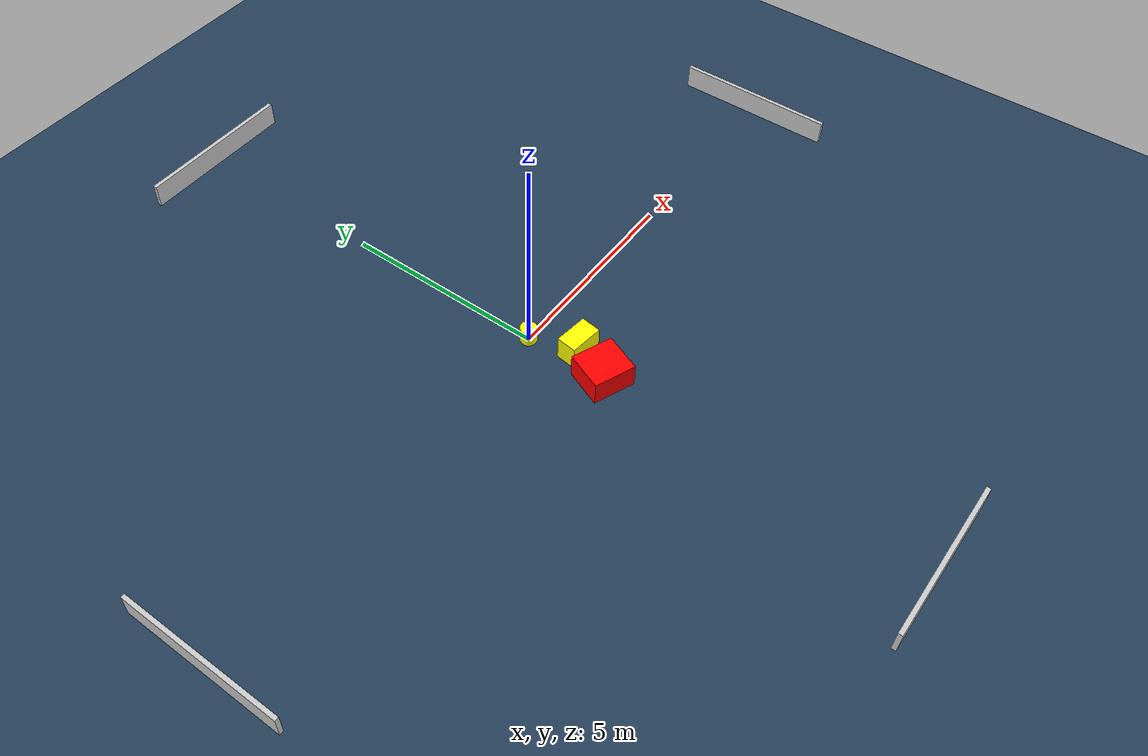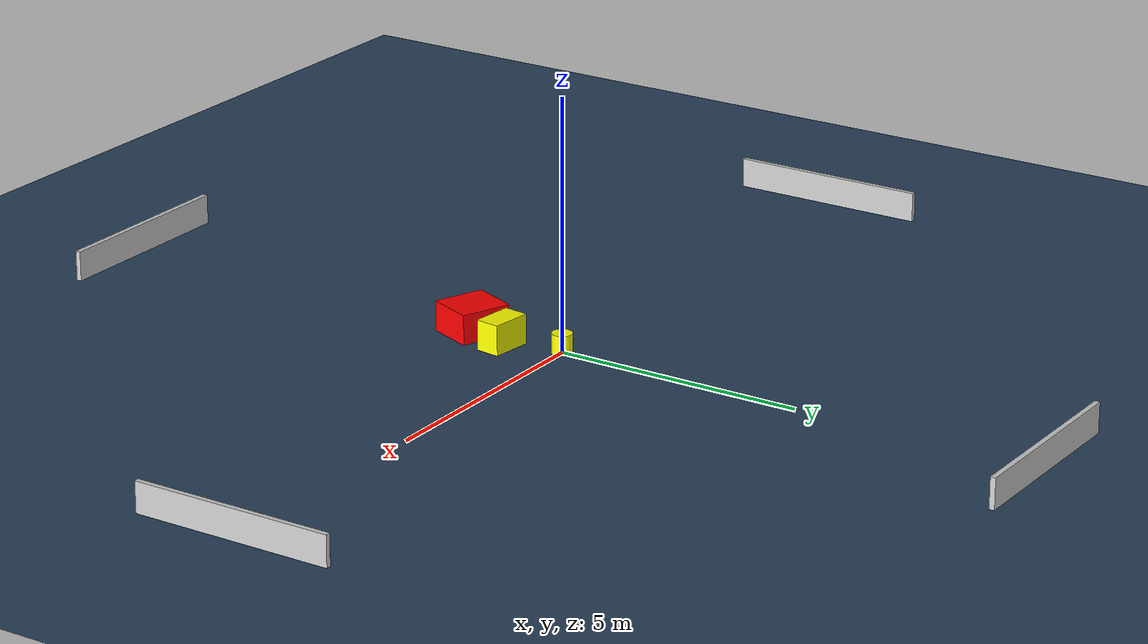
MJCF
<?xml version="1.0" ?>
<mujoco model="generated_environment">
  <option timestep="0.01" integrator="RK4" cone="elliptic"/>
  <default>
    <geom density="1"/>
  </default>
  <asset>
    <texture builtin="gradient" height="3072" name="skybox" rgb1="0.3 0.5 0.7" rgb2="0 0 0" type="skybox" width="512"/>
    <texture builtin="checker" height="300" name="groundplane" rgb1="0.2 0.3 0.4" rgb2="0.1 0.2 0.3" type="2d" width="300"/>
    <material name="groundplane" reflectance="0.2" texrepeat="5 5" texture="groundplane"/>
  </asset>
  <worldbody>
    <light dir="0 0 -1" directional="true" pos="0 0 1.5"/>
    <geom condim="3" friction="0.5 0.005 0.001" material="groundplane" name="floor" pos="0 0 0" size="0 0 0.05" type="plane"/>
    <body name="walls">
      <geom name="wall_1" condim="4" pos="-10.0 0.0 0.3" rgba="0.800000011920929 0.800000011920929 0.800000011920929 1.0" size="0.05 2.0 0.3" type="box"/>
      <geom name="wall_2" condim="4" pos="10.0 0.0 0.3" rgba="0.800000011920929 0.800000011920929 0.800000011920929 1.0" size="0.05 2.0 0.3" type="box"/>
      <geom name="wall_3" condim="4" pos="0.0 -10.0 0.3" rgba="0.800000011920929 0.800000011920929 0.800000011920929 1.0" size="2.0 0.05 0.3" type="box"/>
      <geom name="wall_4" condim="4" pos="0.0 10.0 0.3" rgba="0.800000011920929 0.800000011920929 0.800000011920929 1.0" size="2.0 0.05 0.3" type="box"/>
    </body>
    <body name="robot">
      <joint name="joint_x" type="slide" pos="0 0 0" axis="1 0 0"/>
      <joint name="joint_y" type="slide" pos="0 0 0" axis="0 1 0"/>
      <geom name="robot" type="cylinder" pos="0.0 0.0 0.2" size="0.2 0.2 0.0" mass="5.0" friction="1.0 0.005 0.0001" condim="4" rgba="1.0 1.0 0.0 1.0"/>
    </body>
    <body name="obstacle_1_movable">
      <geom name="obstacle_1_movable" condim="4" pos="0.3668958187258605 -1.1090972702865827 0.3" euler="0 0 353.2169017994953" friction="0.0 0.005 0.001" rgba="1.0 1.0 0.0 1.0" size="0.41446515060384204 0.24464390605491929 0.3" type="box" mass="0.1"/>
      <joint type="free"/>
    </body>
    <body name="obstacle_2_static">
      <geom name="obstacle_2_static" condim="4" pos="0.05320562549566088 -1.9886173370157156 0.3" euler="0 0 337.96976596071227" friction="0.0 0.005 0.001" rgba="1.0 0.0 0.0 1.0" size="0.5166512144338313 0.476550671772435 0.3" type="box"/>
    </body>
  </worldbody>
  <actuator>
    <motor name="actuator_x" joint="joint_x" gear="1" ctrlrange="-1 1"/>
    <motor name="actuator_y" joint="joint_y" gear="1" ctrlrange="-1 1"/>
  </actuator>
</mujoco>
